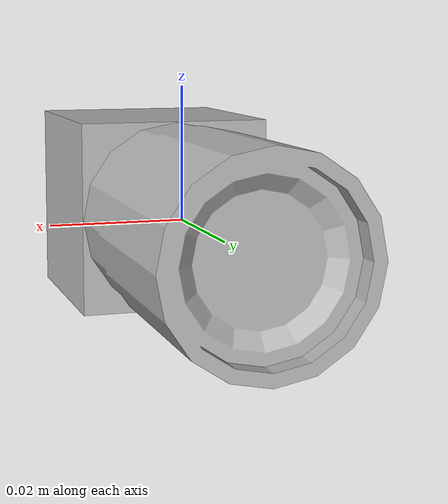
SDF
<?xml version="1.0"?>
<sdf version="1.6">
  <model name="mono_camera">
    <link name="mono_camera_link">
      <visual name="mono_camera_visual">
        <pose>0 -0.033 0 0 0 3.1415</pose>
        <geometry>
          <mesh>
            <uri>model://mono_camera/mesh/mono_camera.dae</uri>
          </mesh>
        </geometry>
      </visual>
      <collision name="mono_camera_lens_collision">
        <pose>0 0.018 0 1.57 0 0</pose>
        <geometry>
          <cylinder>
            <length>0.042</length>
            <radius>0.015</radius>
          </cylinder>
        </geometry>
      </collision>
      <collision name="mono_camera_box_collision">
        <pose>0 -0.0205 0 0 0 0</pose>
        <geometry>
          <box>
            <size>0.03 0.036 0.03</size>
          </box>
        </geometry>
      </collision>
      <inertial>
        <mass>0.3</mass>
        <inertia>
          <ixx>0.0001746</ixx>
          <iyy>0.0000450</iyy>
          <izz>0.0001746</izz>
          <ixy>0</ixy>
          <ixz>0</ixz>
          <iyz>0</iyz>
        </inertia>
      </inertial>
    </link>
  </model>
</sdf>
